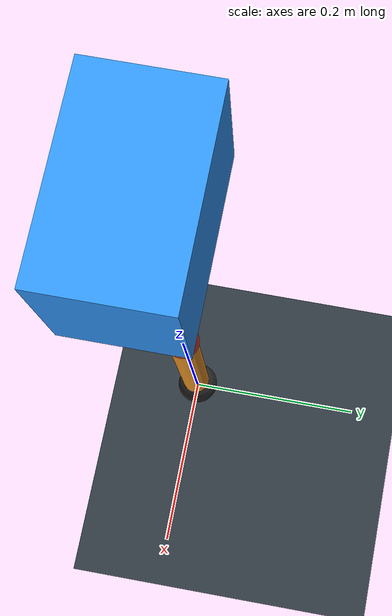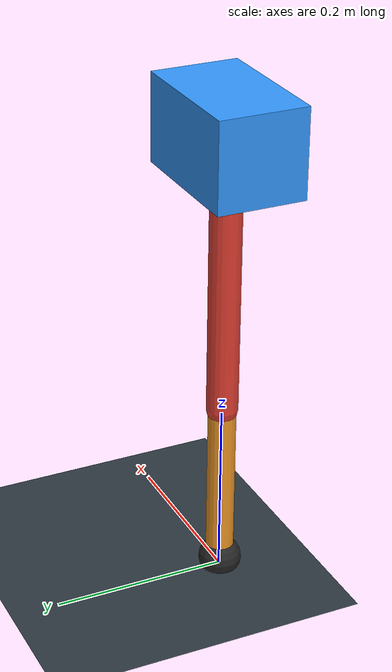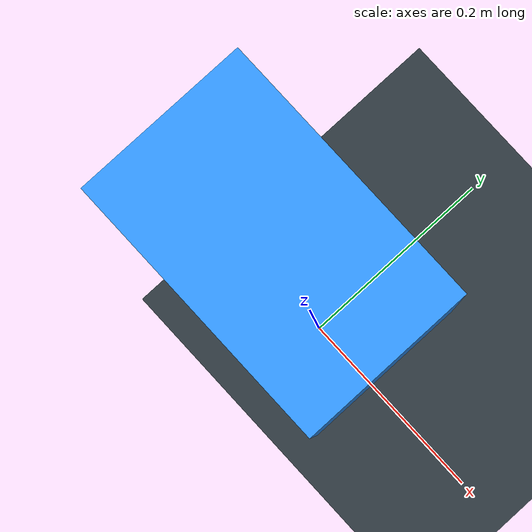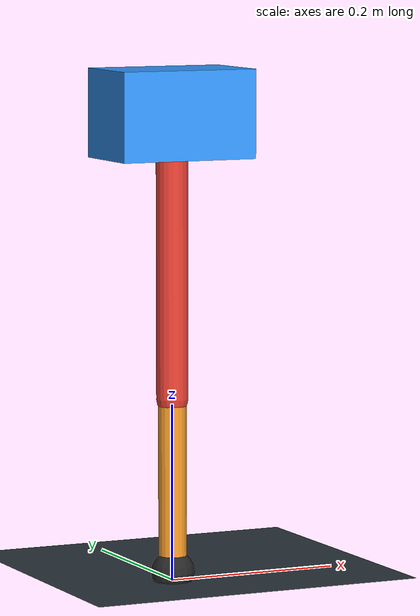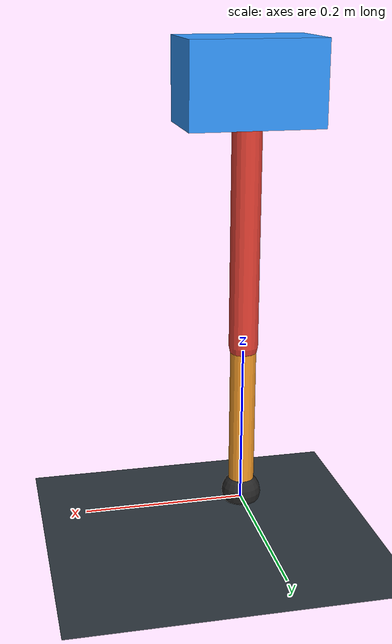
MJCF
<mujoco model="single_axis_two_bar">
  <compiler angle="radian" inertiafromgeom="true"/>
  <option timestep="0.001" integrator="implicitfast" gravity="0 0 -9.81"/>
  <default>
    <joint damping="0.08"/>
    <geom friction="1.2 0.01 0.0001" condim="3"/>
  </default>
  <worldbody>
    <geom name="floor" type="plane" size="5 5 0.1" rgba="0.18 0.22 0.25 1"/>
    <body name="carriage" pos="0 0 0.5285569868916257">
      <joint name="pole_slide" type="slide" axis="0 0 1"/>
      <geom name="payload" type="box" size="0.08 0.05 0.05" mass="2.096240115918634" rgba="0.2 0.6 1 1"/>
      <body name="thigh" pos="0 0 0">
        <joint name="hip" type="hinge" axis="0 1 0"/>
        <geom name="thigh_link" type="capsule" fromto="0 0 0 0 0 -0.32186434420879684" size="0.018" mass="0.22933259831083574" rgba="0.9 0.25 0.2 1"/>
        <body name="shank" pos="0 0 -0.32186434420879684">
          <joint name="knee" type="hinge" axis="0 1 0"/>
          <geom name="shank_link" type="capsule" fromto="0 0 0 0 0 -0.19726657011246673" size="0.016" mass="0.14055503785287632" rgba="0.95 0.6 0.15 1"/>
          <geom name="foot" type="sphere" pos="0 0 -0.19726657011246673" size="0.025" mass="0.03" rgba="0.15 0.15 0.15 1"/>
          <site name="toe" pos="0 0 -0.19726657011246673" size="0.008"/>
        </body>
      </body>
    </body>
  </worldbody>
  <actuator>
    <motor name="hip_motor" joint="hip" ctrlrange="-14.971121632196793 14.971121632196793"/>
    <motor name="knee_motor" joint="knee" ctrlrange="-40.82218288654751 40.82218288654751"/>
  </actuator>
</mujoco>
